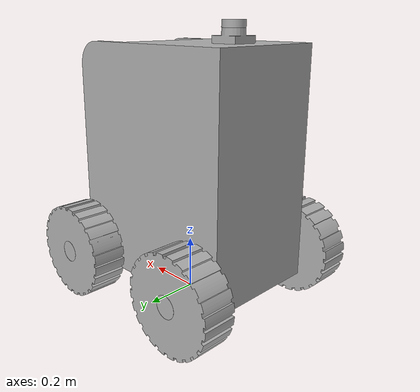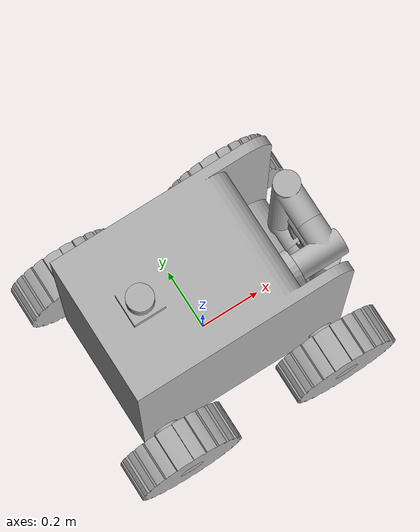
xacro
<?xml version="1.0" ?>
<robot name="jannat2" xmlns:xacro="http://www.ros.org/wiki/xacro">

<xacro:include filename="$(find jannat2_description)/urdf/materials.xacro" />
<xacro:include filename="$(find jannat2_description)/urdf/jannat2.trans" />
<xacro:include filename="$(find jannat2_description)/gazebo/jannat2_materials.gazebo" />
<xacro:include filename="$(find jannat2_description)/gazebo/jannat2_physics.gazebo" />
<xacro:include filename="$(find jannat2_description)/gazebo/jannat2_plugins.gazebo" />

<link name="base_link">
  <inertial>
    <origin rpy="0 0 0" xyz="-0.017574895093873062 -0.00034519725312732167 0.4036667435951253"/>
    <mass value="146.70345944026755"/>
    <inertia ixx="14.850041" ixy="0.011651" ixz="0.745242" iyy="17.9812" iyz="0.020704" izz="10.595222"/>
  </inertial>
  <visual>
    <origin rpy="0 0 0" xyz="0 0 0"/>
    <geometry>
      <mesh filename="package://jannat2_description/meshes/base_link.stl" scale="0.001 0.001 0.001"/>
    </geometry>
    <material name="silver"/>
  </visual>
  <collision>
    <origin rpy="0 0 0" xyz="0 0 0"/>
    <geometry>
      <mesh filename="package://jannat2_description/meshes/base_link.stl" scale="0.001 0.001 0.001"/>
    </geometry>
  </collision>
</link>

<link name="wheel_1_1">
  <inertial>
    <origin rpy="0 0 0" xyz="0.0 0.06249999999999983 0.0"/>
    <mass value="17.809629848338286"/>
    <inertia ixx="0.162032" ixy="0.0" ixz="0.0" iyy="0.277686" iyz="0.0" izz="0.162032"/>
  </inertial>
  <visual>
    <origin rpy="0 0 0" xyz="-0.275 0.375 -0.175"/>
    <geometry>
      <mesh filename="package://jannat2_description/meshes/wheel_1_1.stl" scale="0.001 0.001 0.001"/>
    </geometry>
    <material name="silver"/>
  </visual>
  <collision>
    <origin rpy="0 0 0" xyz="-0.275 0.375 -0.175"/>
    <geometry>
      <mesh filename="package://jannat2_description/meshes/wheel_1_1.stl" scale="0.001 0.001 0.001"/>
    </geometry>
  </collision>
</link>

<link name="wheel_3_1">
  <inertial>
    <origin rpy="0 0 0" xyz="-5.551115123125783e-17 0.06249999999999983 -1.942890293094024e-16"/>
    <mass value="17.80962984833829"/>
    <inertia ixx="0.162032" ixy="-0.0" ixz="-0.0" iyy="0.277686" iyz="-0.0" izz="0.162032"/>
  </inertial>
  <visual>
    <origin rpy="0 0 0" xyz="0.275 0.375 -0.175"/>
    <geometry>
      <mesh filename="package://jannat2_description/meshes/wheel_3_1.stl" scale="0.001 0.001 0.001"/>
    </geometry>
    <material name="silver"/>
  </visual>
  <collision>
    <origin rpy="0 0 0" xyz="0.275 0.375 -0.175"/>
    <geometry>
      <mesh filename="package://jannat2_description/meshes/wheel_3_1.stl" scale="0.001 0.001 0.001"/>
    </geometry>
  </collision>
</link>

<link name="wheel_2_1">
  <inertial>
    <origin rpy="0 0 0" xyz="5.551115123125783e-17 -0.06249999999999983 -1.942890293094024e-16"/>
    <mass value="17.80962984833829"/>
    <inertia ixx="0.162032" ixy="-0.0" ixz="0.0" iyy="0.277686" iyz="0.0" izz="0.162032"/>
  </inertial>
  <visual>
    <origin rpy="0 0 0" xyz="-0.275 -0.375 -0.175"/>
    <geometry>
      <mesh filename="package://jannat2_description/meshes/wheel_2_1.stl" scale="0.001 0.001 0.001"/>
    </geometry>
    <material name="silver"/>
  </visual>
  <collision>
    <origin rpy="0 0 0" xyz="-0.275 -0.375 -0.175"/>
    <geometry>
      <mesh filename="package://jannat2_description/meshes/wheel_2_1.stl" scale="0.001 0.001 0.001"/>
    </geometry>
  </collision>
</link>

<link name="wheel_4_1">
  <inertial>
    <origin rpy="0 0 0" xyz="0.0 -0.06249999999999983 0.0"/>
    <mass value="17.809629848338286"/>
    <inertia ixx="0.162032" ixy="0.0" ixz="-0.0" iyy="0.277686" iyz="-0.0" izz="0.162032"/>
  </inertial>
  <visual>
    <origin rpy="0 0 0" xyz="0.275 -0.375 -0.175"/>
    <geometry>
      <mesh filename="package://jannat2_description/meshes/wheel_4_1.stl" scale="0.001 0.001 0.001"/>
    </geometry>
    <material name="silver"/>
  </visual>
  <collision>
    <origin rpy="0 0 0" xyz="0.275 -0.375 -0.175"/>
    <geometry>
      <mesh filename="package://jannat2_description/meshes/wheel_4_1.stl" scale="0.001 0.001 0.001"/>
    </geometry>
  </collision>
</link>

<link name="lidar_1_1">
  <inertial>
    <origin rpy="0 0 0" xyz="-2.7755575615628914e-17 9.046911093940672e-18 0.012499999999999956"/>
    <mass value="0.17907078125461814"/>
    <inertia ixx="8.1e-05" ixy="-0.0" ixz="0.0" iyy="8.1e-05" iyz="0.0" izz="0.000143"/>
  </inertial>
  <visual>
    <origin rpy="0 0 0" xyz="0.2 -0.0 -1.0"/>
    <geometry>
      <mesh filename="package://jannat2_description/meshes/lidar_1_1.stl" scale="0.001 0.001 0.001"/>
    </geometry>
    <material name="silver"/>
  </visual>
  <collision>
    <origin rpy="0 0 0" xyz="0.2 -0.0 -1.0"/>
    <geometry>
      <mesh filename="package://jannat2_description/meshes/lidar_1_1.stl" scale="0.001 0.001 0.001"/>
    </geometry>
  </collision>
</link>

<link name="arm_link_1_1">
  <inertial>
    <origin rpy="0 0 0" xyz="0.08294631960323426 0.016743757069865722 -3.3306690738754696e-16"/>
    <mass value="8.130283561647728"/>
    <inertia ixx="0.012464" ixy="-0.002895" ixz="0.0" iyy="0.01668" iyz="-0.0" izz="0.022425"/>
  </inertial>
  <visual>
    <origin rpy="0 0 0" xyz="-0.225 0.125 -0.8125"/>
    <geometry>
      <mesh filename="package://jannat2_description/meshes/arm_link_1_1.stl" scale="0.001 0.001 0.001"/>
    </geometry>
    <material name="silver"/>
  </visual>
  <collision>
    <origin rpy="0 0 0" xyz="-0.225 0.125 -0.8125"/>
    <geometry>
      <mesh filename="package://jannat2_description/meshes/arm_link_1_1.stl" scale="0.001 0.001 0.001"/>
    </geometry>
  </collision>
</link>

<link name="arm_link_2_1">
  <inertial>
    <origin rpy="0 0 0" xyz="2.7590942391908513e-07 0.10456827152393106 -0.20010614939134552"/>
    <mass value="25.34640773380006"/>
    <inertia ixx="0.691409" ixy="-0.0" ixz="-0.0" iyy="0.668791" iyz="0.022428" izz="0.043324"/>
  </inertial>
  <visual>
    <origin rpy="0 0 0" xyz="-0.329213 0.035 -0.8125"/>
    <geometry>
      <mesh filename="package://jannat2_description/meshes/arm_link_2_1.stl" scale="0.001 0.001 0.001"/>
    </geometry>
    <material name="silver"/>
  </visual>
  <collision>
    <origin rpy="0 0 0" xyz="-0.329213 0.035 -0.8125"/>
    <geometry>
      <mesh filename="package://jannat2_description/meshes/arm_link_2_1.stl" scale="0.001 0.001 0.001"/>
    </geometry>
  </collision>
</link>

<link name="arm_link_3_1">
  <inertial>
    <origin rpy="0 0 0" xyz="0.004491712570791617 -0.10294874816607076 0.11752995598761445"/>
    <mass value="18.290270913362715"/>
    <inertia ixx="0.245445" ixy="0.001194" ixz="-0.002784" iyy="0.22762" iyz="0.02224" izz="0.032842"/>
  </inertial>
  <visual>
    <origin rpy="0 0 0" xyz="-0.329213 0.004737 -0.3925"/>
    <geometry>
      <mesh filename="package://jannat2_description/meshes/arm_link_3_1.stl" scale="0.001 0.001 0.001"/>
    </geometry>
    <material name="silver"/>
  </visual>
  <collision>
    <origin rpy="0 0 0" xyz="-0.329213 0.004737 -0.3925"/>
    <geometry>
      <mesh filename="package://jannat2_description/meshes/arm_link_3_1.stl" scale="0.001 0.001 0.001"/>
    </geometry>
  </collision>
</link>

<link name="arm_link_4_1">
  <inertial>
    <origin rpy="0 0 0" xyz="7.402536805756199e-09 0.04178217358890682 -0.007641319792348722"/>
    <mass value="2.9409635407212122"/>
    <inertia ixx="0.003004" ixy="-0.0" ixz="0.0" iyy="0.002438" iyz="0.000185" izz="0.002321"/>
  </inertial>
  <visual>
    <origin rpy="0 0 0" xyz="-0.335 0.055 -0.6675"/>
    <geometry>
      <mesh filename="package://jannat2_description/meshes/arm_link_4_1.stl" scale="0.001 0.001 0.001"/>
    </geometry>
    <material name="silver"/>
  </visual>
  <collision>
    <origin rpy="0 0 0" xyz="-0.335 0.055 -0.6675"/>
    <geometry>
      <mesh filename="package://jannat2_description/meshes/arm_link_4_1.stl" scale="0.001 0.001 0.001"/>
    </geometry>
  </collision>
</link>

<link name="gripper_link_1">
  <inertial>
    <origin rpy="0 0 0" xyz="5.242150880047092e-09 -0.0002958279513090396 -0.06674285851301676"/>
    <mass value="0.01543570992059533"/>
    <inertia ixx="3.4e-05" ixy="-0.0" ixz="-0.0" iyy="2.9e-05" iyz="0.0" izz="1.1e-05"/>
  </inertial>
  <visual>
    <origin rpy="0 0 0" xyz="-0.335 0.005 -0.6125"/>
    <geometry>
      <mesh filename="package://jannat2_description/meshes/gripper_link_1.stl" scale="0.001 0.001 0.001"/>
    </geometry>
    <material name="silver"/>
  </visual>
  <collision>
    <origin rpy="0 0 0" xyz="-0.335 0.005 -0.6125"/>
    <geometry>
      <mesh filename="package://jannat2_description/meshes/gripper_link_1.stl" scale="0.001 0.001 0.001"/>
    </geometry>
  </collision>
</link>

<joint name="wheel1_jt" type="continuous">
  <origin rpy="0 0 0" xyz="0.275 -0.375 0.175"/>
  <parent link="base_link"/>
  <child link="wheel_1_1"/>
  <axis xyz="0.0 1.0 0.0"/>
</joint>

<joint name="wheel3_jt" type="continuous">
  <origin rpy="0 0 0" xyz="-0.275 -0.375 0.175"/>
  <parent link="base_link"/>
  <child link="wheel_3_1"/>
  <axis xyz="0.0 1.0 0.0"/>
</joint>

<joint name="wheel2_jt" type="continuous">
  <origin rpy="0 0 0" xyz="0.275 0.375 0.175"/>
  <parent link="base_link"/>
  <child link="wheel_2_1"/>
  <axis xyz="0.0 1.0 0.0"/>
</joint>

<joint name="wheel4_jt" type="continuous">
  <origin rpy="0 0 0" xyz="-0.275 0.375 0.175"/>
  <parent link="base_link"/>
  <child link="wheel_4_1"/>
  <axis xyz="0.0 1.0 0.0"/>
</joint>

<joint name="lidar_jt" type="fixed">
  <origin rpy="0 0 0" xyz="-0.2 0.0 1.0"/>
  <parent link="base_link"/>
  <child link="lidar_1_1"/>
</joint>

<joint name="arm_base_jt" type="fixed">
  <origin rpy="0 0 0" xyz="0.225 -0.125 0.8125"/>
  <parent link="base_link"/>
  <child link="arm_link_1_1"/>
  <axis xyz="1.0 0.0 0.0"/>
</joint>

<joint name="armlink12_jt" type="fixed">
  <origin rpy="0 0 0" xyz="0.104213 0.09 0.0"/>
  <parent link="arm_link_1_1"/>
  <child link="arm_link_2_1"/>
  <axis xyz="-0.0 1.0 -0.0"/>
</joint>

<joint name="armlink23_jt" type="fixed">
  <origin rpy="0 0 0" xyz="0.0 0.030263 -0.42"/>
  <parent link="arm_link_2_1"/>
  <child link="arm_link_3_1"/>
  <axis xyz="-0.0 -1.0 0.0"/>
</joint>

<joint name="armlink34_jt" type="fixed">
  <origin rpy="0 0 0" xyz="0.005787 -0.050263 0.275"/>
  <parent link="arm_link_3_1"/>
  <child link="arm_link_4_1"/>
  <axis xyz="-0.0 1.0 -0.0"/>
</joint>

<joint name="gripper_jt" type="fixed">
  <origin rpy="0 0 0" xyz="0.0 0.05 -0.055"/>
  <parent link="arm_link_4_1"/>
  <child link="gripper_link_1"/>
  <axis xyz="0.0 -0.0 -1.0"/>
</joint>

</robot>

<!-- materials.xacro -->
<robot name="jannat2" xmlns:xacro="http://www.ros.org/wiki/xacro" >

<material name="silver">
  <color rgba="0.700 0.700 0.700 1.000"/>
</material>

</robot>

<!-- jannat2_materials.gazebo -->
<robot name="jannat2" xmlns:xacro="http://www.ros.org/wiki/xacro" >

<xacro:property name="body_color" value="Gazebo/Blue" />
<xacro:property name="wheel_color" value="Gazebo/Black" />
<xacro:property name="arm1_color" value="Gazebo/Grey" />
<xacro:property name="arm2_color" value="Gazebo/White" />

<gazebo reference="base_link">
  <material>${body_color}</material>
</gazebo>

<gazebo reference="wheel_1_1">
  <material>${wheel_color}</material>
</gazebo>

<gazebo reference="wheel_3_1">
  <material>${wheel_color}</material>
</gazebo>

<gazebo reference="wheel_2_1">
  <material>${wheel_color}</material>
</gazebo>

<gazebo reference="wheel_4_1">
  <material>${wheel_color}</material>
</gazebo>

<gazebo reference="lidar_1_1">
  <material>${wheel_color}</material>
</gazebo>

<gazebo reference="arm_link_1_1">
  <material>${arm1_color}</material>
</gazebo>

<gazebo reference="arm_link_2_1">
  <material>${arm2_color}</material>
</gazebo>

<gazebo reference="arm_link_3_1">
  <material>${arm1_color}</material>
</gazebo>

<gazebo reference="arm_link_4_1">
  <material>${arm2_color}</material>
</gazebo>

<gazebo reference="gripper_link_1">
  <material>${arm1_color}</material>
</gazebo>

</robot>
